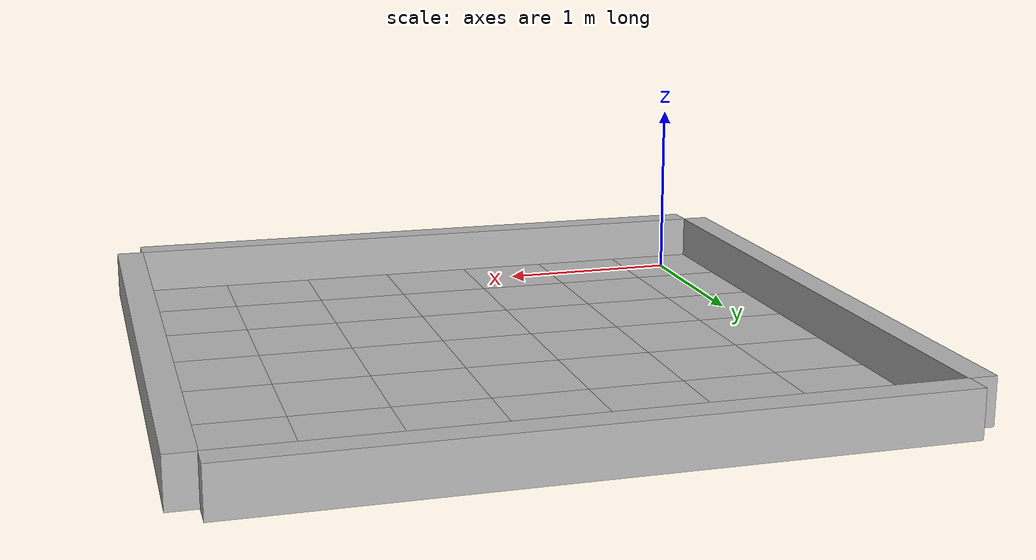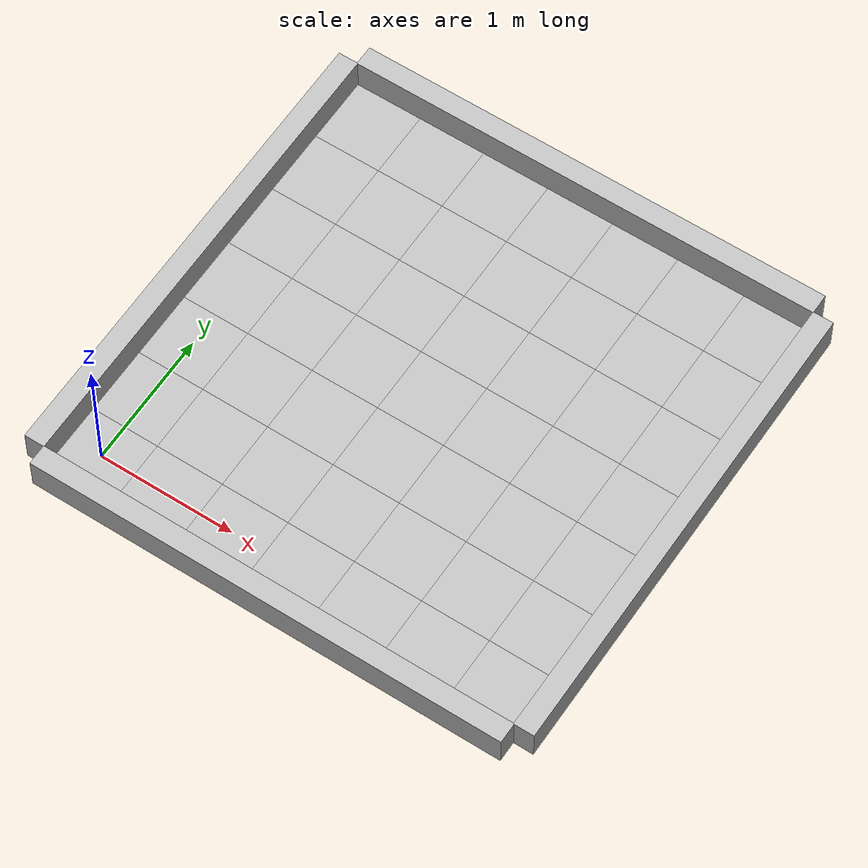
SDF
<sdf version="1.5">
 <world name="default">
  <physics name="default_physics" default="0" type="ode">
   <max_step_size>0.001</max_step_size>
   <real_time_factor>1</real_time_factor>
   <real_time_update_rate>1000</real_time_update_rate>
  </physics>
  <scene>
   <ambient>0.4 0.4 0.4 1</ambient>
   <background>0.7 0.7 0.7 1</background>
   <shadows>0</shadows>
   <grid>0</grid>
  </scene>
  <light name="sun" type="directional">
   <cast_shadows>0</cast_shadows>
   <pose>0 -100 10 0 -0 0</pose>
   <diffuse>0.8 0.8 0.8 1</diffuse>
   <specular>0.1 0.1 0.1 1</specular>
   <attenuation>
    <range>1000</range>
    <constant>0.9</constant>
    <linear>0.01</linear>
    <quadratic>0.001</quadratic>
   </attenuation>
   <direction>-0.5 0.5 -1</direction>
  </light>
  <include><name>arena</name><uri>model://unibg_arena</uri></include>
  <include><name>rail-N1</name><uri>model://dia_rail</uri><pose>1.5 3.32 0.12 0 0 0</pose></include>
  <include><name>rail-N2</name><uri>model://dia_rail</uri><pose>1.5 -0.32 0.12 0 0 0</pose></include>
  <include><name>rail-E1</name><uri>model://dia_rail</uri><pose>3.32 1.5 0.12 0 0 1.57</pose></include>
  <include><name>rail-E2</name><uri>model://dia_rail</uri><pose>-0.32 1.5 0.12 0 0 1.57</pose></include>
  <gravity>0 0 -9.8</gravity>
  <magnetic_field>6e-06 2.3e-05 -4.2e-05</magnetic_field>
  <atmosphere type="adiabatic"/>
  <spherical_coordinates>
   <surface_model>EARTH_WGS84</surface_model>
   <latitude_deg>0</latitude_deg>
   <longitude_deg>0</longitude_deg>
   <elevation>0</elevation>
   <heading_deg>0</heading_deg>
  </spherical_coordinates>
 </world>
</sdf>

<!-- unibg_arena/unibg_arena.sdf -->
<sdf version="1.5">
  <model name="unibg_arena">
    <static>true</static>
    <link name="link">
      <collision name="surface_collision">
        <pose>1.525 1.525 0 0 0 0 0</pose>
        <geometry>
          <box>
            <size>3.55 3.55 0.01</size>
          </box>
        </geometry>
        <surface>
          <friction>
            <ode>
              <mu>0.3</mu>
              <mu2>0.3</mu2>
            </ode>
          </friction>
        </surface>
      </collision>

      <!-- Set 1 -->
      <visual name="tile-1">
        <pose>0 0 0 0 0 0 0</pose>
        <geometry>
          <box>
            <size>0.5 0.5 0.01</size>
          </box>
        </geometry>
        <material>
          <script>
            <uri>model://unibg_arena/materials/scripts</uri>
            <uri>model://unibg_arena/materials/textures</uri>
            <name>arena_tile/Diffuse</name>
          </script>
        </material>
      </visual>

      <visual name="tile-2">
        <pose>0.5 0 0 0 0 0 0</pose>
        <geometry>
          <box>
            <size>0.5 0.5 0.01</size>
          </box>
        </geometry>
        <material>
          <script>
            <uri>model://unibg_arena/materials/scripts</uri>
            <uri>model://unibg_arena/materials/textures</uri>
            <name>arena_tile/Diffuse</name>
          </script>
        </material>
      </visual>

      <visual name="tile-3">
        <pose>1 0 0 0 0 0 0</pose>
        <geometry>
          <box>
            <size>0.5 0.5 0.01</size>
          </box>
        </geometry>
        <material>
          <script>
            <uri>model://unibg_arena/materials/scripts</uri>
            <uri>model://unibg_arena/materials/textures</uri>
            <name>arena_tile/Diffuse</name>
          </script>
        </material>
      </visual>

      <visual name="tile-4">
        <pose>1.5 0 0 0 0 0 0</pose>
        <geometry>
          <box>
            <size>0.5 0.5 0.01</size>
          </box>
        </geometry>
        <material>
          <script>
            <uri>model://unibg_arena/materials/scripts</uri>
            <uri>model://unibg_arena/materials/textures</uri>
            <name>arena_tile/Diffuse</name>
          </script>
        </material>
      </visual>

      <visual name="tile-5">
        <pose>2 0 0 0 0 0 0</pose>
        <geometry>
          <box>
            <size>0.5 0.5 0.01</size>
          </box>
        </geometry>
        <material>
          <script>
            <uri>model://unibg_arena/materials/scripts</uri>
            <uri>model://unibg_arena/materials/textures</uri>
            <name>arena_tile/Diffuse</name>
          </script>
        </material>
      </visual>

      <visual name="tile-6">
        <pose>2.5 0 0 0 0 0 0</pose>
        <geometry>
          <box>
            <size>0.5 0.5 0.01</size>
          </box>
        </geometry>
        <material>
          <script>
            <uri>model://unibg_arena/materials/scripts</uri>
            <uri>model://unibg_arena/materials/textures</uri>
            <name>arena_tile/Diffuse</name>
          </script>
        </material>
      </visual>

      <visual name="tile-7">
        <pose>3 0 0 0 0 0 0</pose>
        <geometry>
          <box>
            <size>0.5 0.5 0.01</size>
          </box>
        </geometry>
        <material>
          <script>
            <uri>model://unibg_arena/materials/scripts</uri>
            <uri>model://unibg_arena/materials/textures</uri>
            <name>arena_tile/Diffuse</name>
          </script>
        </material>
      </visual>

      <visual name="tile-8">
        <pose>0 0.5 0 0 0 0 0</pose>
        <geometry>
          <box>
            <size>0.5 0.5 0.01</size>
          </box>
        </geometry>
        <material>
          <script>
            <uri>model://unibg_arena/materials/scripts</uri>
            <uri>model://unibg_arena/materials/textures</uri>
            <name>arena_tile/Diffuse</name>
          </script>
        </material>
      </visual>

      <visual name="tile-9">
        <pose>0.5 0.5 0 0 0 0 0</pose>
        <geometry>
          <box>
            <size>0.5 0.5 0.01</size>
          </box>
        </geometry>
        <material>
          <script>
            <uri>model://unibg_arena/materials/scripts</uri>
            <uri>model://unibg_arena/materials/textures</uri>
            <name>arena_tile/Diffuse</name>
          </script>
        </material>
      </visual>

      <visual name="tile-10">
        <pose>1 0.5 0 0 0 0 0</pose>
        <geometry>
          <box>
            <size>0.5 0.5 0.01</size>
          </box>
        </geometry>
        <material>
          <script>
            <uri>model://unibg_arena/materials/scripts</uri>
            <uri>model://unibg_arena/materials/textures</uri>
            <name>arena_tile/Diffuse</name>
          </script>
        </material>
      </visual>

      <visual name="tile-11">
        <pose>1.5 0.5 0 0 0 0 0</pose>
        <geometry>
          <box>
            <size>0.5 0.5 0.01</size>
          </box>
        </geometry>
        <material>
          <script>
            <uri>model://unibg_arena/materials/scripts</uri>
            <uri>model://unibg_arena/materials/textures</uri>
            <name>arena_tile/Diffuse</name>
          </script>
        </material>
      </visual>

      <visual name="tile-12">
        <pose>2 0.5 0 0 0 0 0</pose>
        <geometry>
          <box>
            <size>0.5 0.5 0.01</size>
          </box>
        </geometry>
        <material>
          <script>
            <uri>model://unibg_arena/materials/scripts</uri>
            <uri>model://unibg_arena/materials/textures</uri>
            <name>arena_tile/Diffuse</name>
          </script>
        </material>
      </visual>

      <visual name="tile-13">
        <pose>2.5 0.5 0 0 0 0 0</pose>
        <geometry>
          <box>
            <size>0.5 0.5 0.01</size>
          </box>
        </geometry>
        <material>
          <script>
            <uri>model://unibg_arena/materials/scripts</uri>
            <uri>model://unibg_arena/materials/textures</uri>
            <name>arena_tile/Diffuse</name>
          </script>
        </material>
      </visual>

      <visual name="tile-14">
        <pose>3 0.5 0 0 0 0 0</pose>
        <geometry>
          <box>
            <size>0.5 0.5 0.01</size>
          </box>
        </geometry>
        <material>
          <script>
            <uri>model://unibg_arena/materials/scripts</uri>
            <uri>model://unibg_arena/materials/textures</uri>
            <name>arena_tile/Diffuse</name>
          </script>
        </material>
      </visual>

      <visual name="tile-15">
        <pose>0 1 0 0 0 0 0</pose>
        <geometry>
          <box>
            <size>0.5 0.5 0.01</size>
          </box>
        </geometry>
        <material>
          <script>
            <uri>model://unibg_arena/materials/scripts</uri>
            <uri>model://unibg_arena/materials/textures</uri>
            <name>arena_tile/Diffuse</name>
          </script>
        </material>
      </visual>

      <visual name="tile-16">
        <pose>0.5 1 0 0 0 0 0</pose>
        <geometry>
          <box>
            <size>0.5 0.5 0.01</size>
          </box>
        </geometry>
        <material>
          <script>
            <uri>model://unibg_arena/materials/scripts</uri>
            <uri>model://unibg_arena/materials/textures</uri>
            <name>arena_tile/Diffuse</name>
          </script>
        </material>
      </visual>

      <visual name="tile-17">
        <pose>1 1 0 0 0 0 0</pose>
        <geometry>
          <box>
            <size>0.5 0.5 0.01</size>
          </box>
        </geometry>
        <material>
          <script>
            <uri>model://unibg_arena/materials/scripts</uri>
            <uri>model://unibg_arena/materials/textures</uri>
            <name>arena_tile/Diffuse</name>
          </script>
        </material>
      </visual>

      <visual name="tile-18">
        <pose>1.5 1 0 0 0 0 0</pose>
        <geometry>
          <box>
            <size>0.5 0.5 0.01</size>
          </box>
        </geometry>
        <material>
          <script>
            <uri>model://unibg_arena/materials/scripts</uri>
            <uri>model://unibg_arena/materials/textures</uri>
            <name>arena_tile/Diffuse</name>
          </script>
        </material>
      </visual>

      <visual name="tile-19">
        <pose>2 1 0 0 0 0 0</pose>
        <geometry>
          <box>
            <size>0.5 0.5 0.01</size>
          </box>
        </geometry>
        <material>
          <script>
            <uri>model://unibg_arena/materials/scripts</uri>
            <uri>model://unibg_arena/materials/textures</uri>
            <name>arena_tile/Diffuse</name>
          </script>
        </material>
      </visual>

      <visual name="tile-20">
        <pose>2.5 1 0 0 0 0 0</pose>
        <geometry>
          <box>
            <size>0.5 0.5 0.01</size>
          </box>
        </geometry>
        <material>
          <script>
            <uri>model://unibg_arena/materials/scripts</uri>
            <uri>model://unibg_arena/materials/textures</uri>
            <name>arena_tile/Diffuse</name>
          </script>
        </material>
      </visual>

      <visual name="tile-21">
        <pose>3 1 0 0 0 0 0</pose>
        <geometry>
          <box>
            <size>0.5 0.5 0.01</size>
          </box>
        </geometry>
        <material>
          <script>
            <uri>model://unibg_arena/materials/scripts</uri>
            <uri>model://unibg_arena/materials/textures</uri>
            <name>arena_tile/Diffuse</name>
          </script>
        </material>
      </visual>

      <visual name="tile-22">
        <pose>0 1.5 0 0 0 0 0</pose>
        <geometry>
          <box>
            <size>0.5 0.5 0.01</size>
          </box>
        </geometry>
        <material>
          <script>
            <uri>model://unibg_arena/materials/scripts</uri>
            <uri>model://unibg_arena/materials/textures</uri>
            <name>arena_tile/Diffuse</name>
          </script>
        </material>
      </visual>

      <visual name="tile-23">
        <pose>0.5 1.5 0 0 0 0 0</pose>
        <geometry>
          <box>
            <size>0.5 0.5 0.01</size>
          </box>
        </geometry>
        <material>
          <script>
            <uri>model://unibg_arena/materials/scripts</uri>
            <uri>model://unibg_arena/materials/textures</uri>
            <name>arena_tile/Diffuse</name>
          </script>
        </material>
      </visual>

      <visual name="tile-24">
        <pose>1 1.5 0 0 0 0 0</pose>
        <geometry>
          <box>
            <size>0.5 0.5 0.01</size>
          </box>
        </geometry>
        <material>
          <script>
            <uri>model://unibg_arena/materials/scripts</uri>
            <uri>model://unibg_arena/materials/textures</uri>
            <name>arena_tile/Diffuse</name>
          </script>
        </material>
      </visual>

      <visual name="tile-25">
        <pose>1.5 1.5 0 0 0 0 0</pose>
        <geometry>
          <box>
            <size>0.5 0.5 0.01</size>
          </box>
        </geometry>
        <material>
          <script>
            <uri>model://unibg_arena/materials/scripts</uri>
            <uri>model://unibg_arena/materials/textures</uri>
            <name>arena_tile/Diffuse</name>
          </script>
        </material>
      </visual>

      <visual name="tile-26">
        <pose>2 1.5 0 0 0 0 0</pose>
        <geometry>
          <box>
            <size>0.5 0.5 0.01</size>
          </box>
        </geometry>
        <material>
          <script>
            <uri>model://unibg_arena/materials/scripts</uri>
            <uri>model://unibg_arena/materials/textures</uri>
            <name>arena_tile/Diffuse</name>
          </script>
        </material>
      </visual>

      <visual name="tile-27">
        <pose>2.5 1.5 0 0 0 0 0</pose>
        <geometry>
          <box>
            <size>0.5 0.5 0.01</size>
          </box>
        </geometry>
        <material>
          <script>
            <uri>model://unibg_arena/materials/scripts</uri>
            <uri>model://unibg_arena/materials/textures</uri>
            <name>arena_tile/Diffuse</name>
          </script>
        </material>
      </visual>

      <visual name="tile-28">
        <pose>3 1.5 0 0 0 0 0</pose>
        <geometry>
          <box>
            <size>0.5 0.5 0.01</size>
          </box>
        </geometry>
        <material>
          <script>
            <uri>model://unibg_arena/materials/scripts</uri>
            <uri>model://unibg_arena/materials/textures</uri>
            <name>arena_tile/Diffuse</name>
          </script>
        </material>
      </visual>

      <visual name="tile-29">
        <pose>0 2 0 0 0 0 0</pose>
        <geometry>
          <box>
            <size>0.5 0.5 0.01</size>
          </box>
        </geometry>
        <material>
          <script>
            <uri>model://unibg_arena/materials/scripts</uri>
            <uri>model://unibg_arena/materials/textures</uri>
            <name>arena_tile/Diffuse</name>
          </script>
        </material>
      </visual>

      <visual name="tile-30">
        <pose>0.5 2 0 0 0 0 0</pose>
        <geometry>
          <box>
            <size>0.5 0.5 0.01</size>
          </box>
        </geometry>
        <material>
          <script>
            <uri>model://unibg_arena/materials/scripts</uri>
            <uri>model://unibg_arena/materials/textures</uri>
            <name>arena_tile/Diffuse</name>
          </script>
        </material>
      </visual>

      <visual name="tile-31">
        <pose>1 2 0 0 0 0 0</pose>
        <geometry>
          <box>
            <size>0.5 0.5 0.01</size>
          </box>
        </geometry>
        <material>
          <script>
            <uri>model://unibg_arena/materials/scripts</uri>
            <uri>model://unibg_arena/materials/textures</uri>
            <name>arena_tile/Diffuse</name>
          </script>
        </material>
      </visual>

      <visual name="tile-32">
        <pose>1.5 2 0 0 0 0 0</pose>
        <geometry>
          <box>
            <size>0.5 0.5 0.01</size>
          </box>
        </geometry>
        <material>
          <script>
            <uri>model://unibg_arena/materials/scripts</uri>
            <uri>model://unibg_arena/materials/textures</uri>
            <name>arena_tile/Diffuse</name>
          </script>
        </material>
      </visual>

      <visual name="tile-33">
        <pose>2 2 0 0 0 0 0</pose>
        <geometry>
          <box>
            <size>0.5 0.5 0.01</size>
          </box>
        </geometry>
        <material>
          <script>
            <uri>model://unibg_arena/materials/scripts</uri>
            <uri>model://unibg_arena/materials/textures</uri>
            <name>arena_tile/Diffuse</name>
          </script>
        </material>
      </visual>

      <visual name="tile-34">
        <pose>2.5 2 0 0 0 0 0</pose>
        <geometry>
          <box>
            <size>0.5 0.5 0.01</size>
          </box>
        </geometry>
        <material>
          <script>
            <uri>model://unibg_arena/materials/scripts</uri>
            <uri>model://unibg_arena/materials/textures</uri>
            <name>arena_tile/Diffuse</name>
          </script>
        </material>
      </visual>

      <visual name="tile-35">
        <pose>3 2 0 0 0 0 0</pose>
        <geometry>
          <box>
            <size>0.5 0.5 0.01</size>
          </box>
        </geometry>
        <material>
          <script>
            <uri>model://unibg_arena/materials/scripts</uri>
            <uri>model://unibg_arena/materials/textures</uri>
            <name>arena_tile/Diffuse</name>
          </script>
        </material>
      </visual>

      <visual name="tile-36">
        <pose>0 2.5 0 0 0 0 0</pose>
        <geometry>
          <box>
            <size>0.5 0.5 0.01</size>
          </box>
        </geometry>
        <material>
          <script>
            <uri>model://unibg_arena/materials/scripts</uri>
            <uri>model://unibg_arena/materials/textures</uri>
            <name>arena_tile/Diffuse</name>
          </script>
        </material>
      </visual>

      <visual name="tile-37">
        <pose>0.5 2.5 0 0 0 0 0</pose>
        <geometry>
          <box>
            <size>0.5 0.5 0.01</size>
          </box>
        </geometry>
        <material>
          <script>
            <uri>model://unibg_arena/materials/scripts</uri>
            <uri>model://unibg_arena/materials/textures</uri>
            <name>arena_tile/Diffuse</name>
          </script>
        </material>
      </visual>

      <visual name="tile-38">
        <pose>1 2.5 0 0 0 0 0</pose>
        <geometry>
          <box>
            <size>0.5 0.5 0.01</size>
          </box>
        </geometry>
        <material>
          <script>
            <uri>model://unibg_arena/materials/scripts</uri>
            <uri>model://unibg_arena/materials/textures</uri>
            <name>arena_tile/Diffuse</name>
          </script>
        </material>
      </visual>

      <visual name="tile-39">
        <pose>1.5 2.5 0 0 0 0 0</pose>
        <geometry>
          <box>
            <size>0.5 0.5 0.01</size>
          </box>
        </geometry>
        <material>
          <script>
            <uri>model://unibg_arena/materials/scripts</uri>
            <uri>model://unibg_arena/materials/textures</uri>
            <name>arena_tile/Diffuse</name>
          </script>
        </material>
      </visual>

      <visual name="tile-40">
        <pose>2 2.5 0 0 0 0 0</pose>
        <geometry>
          <box>
            <size>0.5 0.5 0.01</size>
          </box>
        </geometry>
        <material>
          <script>
            <uri>model://unibg_arena/materials/scripts</uri>
            <uri>model://unibg_arena/materials/textures</uri>
            <name>arena_tile/Diffuse</name>
          </script>
        </material>
      </visual>

      <visual name="tile-41">
        <pose>2.5 2.5 0 0 0 0 0</pose>
        <geometry>
          <box>
            <size>0.5 0.5 0.01</size>
          </box>
        </geometry>
        <material>
          <script>
            <uri>model://unibg_arena/materials/scripts</uri>
            <uri>model://unibg_arena/materials/textures</uri>
            <name>arena_tile/Diffuse</name>
          </script>
        </material>
      </visual>

      <visual name="tile-42">
        <pose>3 2.5 0 0 0 0 0</pose>
        <geometry>
          <box>
            <size>0.5 0.5 0.01</size>
          </box>
        </geometry>
        <material>
          <script>
            <uri>model://unibg_arena/materials/scripts</uri>
            <uri>model://unibg_arena/materials/textures</uri>
            <name>arena_tile/Diffuse</name>
          </script>
        </material>
      </visual>

      <visual name="tile-43">
        <pose>0 3 0 0 0 0 0</pose>
        <geometry>
          <box>
            <size>0.5 0.5 0.01</size>
          </box>
        </geometry>
        <material>
          <script>
            <uri>model://unibg_arena/materials/scripts</uri>
            <uri>model://unibg_arena/materials/textures</uri>
            <name>arena_tile/Diffuse</name>
          </script>
        </material>
      </visual>

      <visual name="tile-44">
        <pose>0.5 3 0 0 0 0 0</pose>
        <geometry>
          <box>
            <size>0.5 0.5 0.01</size>
          </box>
        </geometry>
        <material>
          <script>
            <uri>model://unibg_arena/materials/scripts</uri>
            <uri>model://unibg_arena/materials/textures</uri>
            <name>arena_tile/Diffuse</name>
          </script>
        </material>
      </visual>

      <visual name="tile-45">
        <pose>1 3 0 0 0 0 0</pose>
        <geometry>
          <box>
            <size>0.5 0.5 0.01</size>
          </box>
        </geometry>
        <material>
          <script>
            <uri>model://unibg_arena/materials/scripts</uri>
            <uri>model://unibg_arena/materials/textures</uri>
            <name>arena_tile/Diffuse</name>
          </script>
        </material>
      </visual>

      <visual name="tile-46">
        <pose>1.5 3 0 0 0 0 0</pose>
        <geometry>
          <box>
            <size>0.5 0.5 0.01</size>
          </box>
        </geometry>
        <material>
          <script>
            <uri>model://unibg_arena/materials/scripts</uri>
            <uri>model://unibg_arena/materials/textures</uri>
            <name>arena_tile/Diffuse</name>
          </script>
        </material>
      </visual>

      <visual name="tile-47">
        <pose>2 3 0 0 0 0 0</pose>
        <geometry>
          <box>
            <size>0.5 0.5 0.01</size>
          </box>
        </geometry>
        <material>
          <script>
            <uri>model://unibg_arena/materials/scripts</uri>
            <uri>model://unibg_arena/materials/textures</uri>
            <name>arena_tile/Diffuse</name>
          </script>
        </material>
      </visual>

      <visual name="tile-48">
        <pose>2.5 3 0 0 0 0 0</pose>
        <geometry>
          <box>
            <size>0.5 0.5 0.01</size>
          </box>
        </geometry>
        <material>
          <script>
            <uri>model://unibg_arena/materials/scripts</uri>
            <uri>model://unibg_arena/materials/textures</uri>
            <name>arena_tile/Diffuse</name>
          </script>
        </material>
      </visual>

      <visual name="tile-49">
        <pose>3 3 0 0 0 0 0</pose>
        <geometry>
          <box>
            <size>0.5 0.5 0.01</size>
          </box>
        </geometry>
        <material>
          <script>
            <uri>model://unibg_arena/materials/scripts</uri>
            <uri>model://unibg_arena/materials/textures</uri>
            <name>arena_tile/Diffuse</name>
          </script>
        </material>
      </visual>

    </link>
  </model>
</sdf>

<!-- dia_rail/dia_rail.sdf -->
<sdf version="1.5">
  <model name="dia_rail">
    <static>true</static>
    <link name="link">
      <collision name="rail-1">
        <pose>0 0 0 0 0 0</pose>
        <geometry>
          <box>
            <size>3.5 0.15 0.25</size>
          </box>
        </geometry>
      </collision>
      <visual name="rail-visual-1">
        <pose>0 0 0 0 0 0</pose>
        <geometry>
          <box>
            <size>3.5 0.15 0.25</size>
          </box>
        </geometry>
        <material>
          <script>
            <uri>model://dia_rail/materials/scripts</uri>
            <uri>model://dia_rail/materials/textures</uri>
            <name>dia_rail/Diffuse</name>
          </script>
        </material>
      </visual>
    </link>
  </model>
</sdf>
